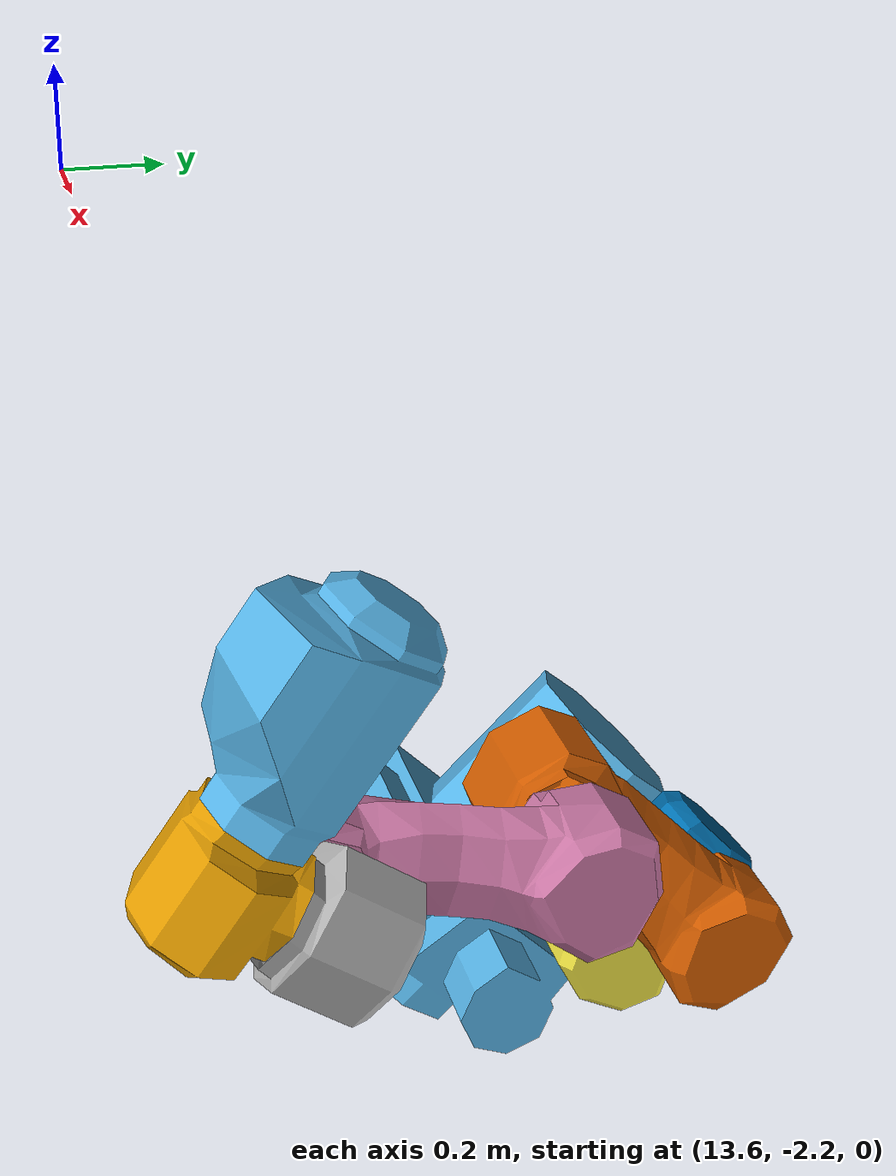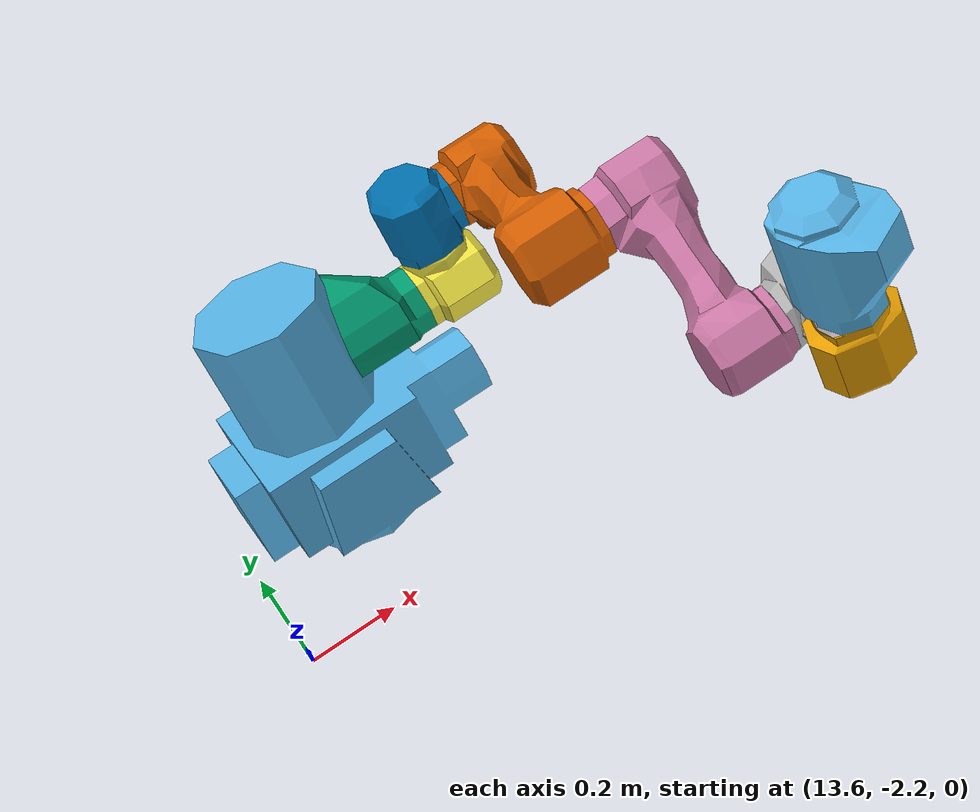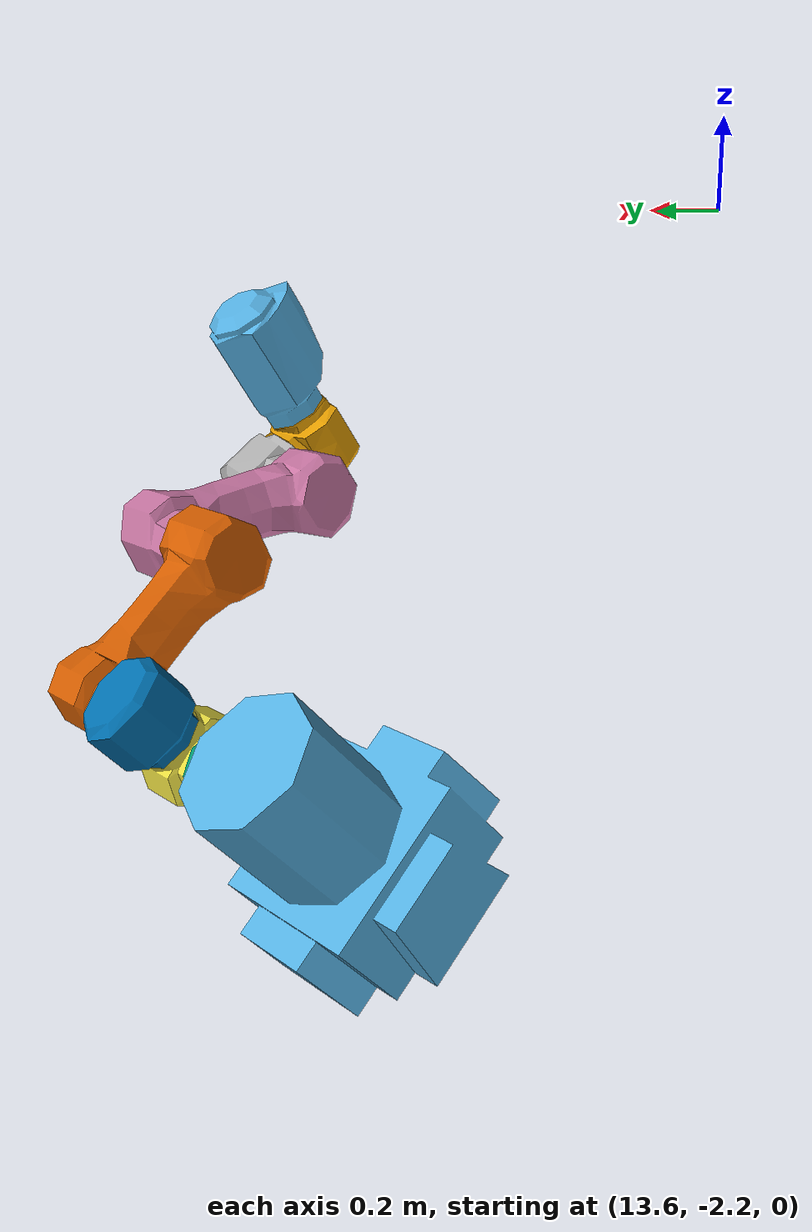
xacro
<?xml version="1.0"?>
<robot xmlns:xacro="http://ros.org/wiki/xacro" name="little_arm">

  <xacro:include filename="$(find gateway_description)/xacro/little_arm_macro.xacro"/>

  <xacro:little_arm> <!--  parent="gateway_body/root"-->
    <origin xyz="0.0 0.0 0.0" rpy="0.0 0.4363 -1.396"/>
  </xacro:little_arm>

  <link name="little_arm_link_tcp"/>

  <joint name="little_arm_tcp" type="fixed">
    <parent link="little_arm_link_8"/>
    <child link="little_arm_link_tcp"/>
    <origin xyz="0 0 0" rpy="0 0 0"/>
  </joint>

</robot>

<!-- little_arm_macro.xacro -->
<robot xmlns:xacro="http://ros.org/wiki/xacro" name="little_arm">

  <!-- LITTLE ARM -->
  <xacro:macro name="little_arm" params=" *origin "> <!--parent:='' -->

  <link name="little_arm_link_0"/>

  <link name="little_arm_link_1">
    <visual>
      <geometry>
        <mesh filename="package://gateway_description/meshes/little_arm/little_arm_link_1.dae" scale="1.0 1.0 1.0"/>
      </geometry>
    </visual>
    <collision>
      <geometry>
        <mesh filename="package://gateway_description/meshes/little_arm/little_arm_link_1.dae" scale="1.0 1.0 1.0"/>
      </geometry>
    </collision>
  </link>

  <link name="little_arm_link_2">
    <visual>
      <geometry>
        <mesh filename="package://gateway_description/meshes/little_arm/little_arm_link_2.dae" scale="1.0 1.0 1.0"/>
      </geometry>
    </visual>
    <collision>
      <geometry>
        <mesh filename="package://gateway_description/meshes/little_arm/little_arm_link_2.dae" scale="1.0 1.0 1.0"/>
      </geometry>
    </collision>
  </link>

  <link name="little_arm_link_3">
    <visual>
      <geometry>
        <mesh filename="package://gateway_description/meshes/little_arm/little_arm_link_3.dae" scale="1.0 1.0 1.0"/>
      </geometry>
    </visual>
    <collision>
      <geometry>
        <mesh filename="package://gateway_description/meshes/little_arm/little_arm_link_3.dae" scale="1.0 1.0 1.0"/>
      </geometry>
    </collision>
  </link>

  <link name="little_arm_link_4">
    <visual>
      <geometry>
        <mesh filename="package://gateway_description/meshes/little_arm/little_arm_link_4.dae" scale="1.0 1.0 1.0"/>
      </geometry>
    </visual>
    <collision>
      <geometry>
        <mesh filename="package://gateway_description/meshes/little_arm/little_arm_link_4.dae" scale="1.0 1.0 1.0"/>
      </geometry>
    </collision>
  </link>

  <link name="little_arm_link_5">
    <visual>
      <geometry>
        <mesh filename="package://gateway_description/meshes/little_arm/little_arm_link_5.dae" scale="1.0 1.0 1.0"/>
      </geometry>
    </visual>
    <collision>
      <geometry>
        <mesh filename="package://gateway_description/meshes/little_arm/little_arm_link_5.dae" scale="1.0 1.0 1.0"/>
      </geometry>
    </collision>
  </link>

  <link name="little_arm_link_6">
    <visual>
      <geometry>
        <mesh filename="package://gateway_description/meshes/little_arm/little_arm_link_6.dae" scale="1.0 1.0 1.0"/>
      </geometry>
    </visual>
    <collision>
      <geometry>
        <mesh filename="package://gateway_description/meshes/little_arm/little_arm_link_6.dae" scale="1.0 1.0 1.0"/>
      </geometry>
    </collision>
  </link>

  <link name="little_arm_link_7">
    <visual>
      <geometry>
        <mesh filename="package://gateway_description/meshes/little_arm/little_arm_link_7.dae" scale="1.0 1.0 1.0"/>
      </geometry>
    </visual>
    <collision>
      <geometry>
        <mesh filename="package://gateway_description/meshes/little_arm/little_arm_link_7.dae" scale="1.0 1.0 1.0"/>
      </geometry>
    </collision>
  </link>

  <link name="little_arm_link_8">
    <visual>
      <geometry>
        <mesh filename="package://gateway_description/meshes/little_arm/little_arm_link_8.dae" scale="1.0 1.0 1.0"/>
      </geometry>
    </visual>
    <collision>
      <geometry>
        <mesh filename="package://gateway_description/meshes/little_arm/little_arm_link_8.dae" scale="1.0 1.0 1.0"/>
      </geometry>
    </collision>
  </link>

  <link name="little_arm_link_9">
    <visual>
      <geometry>
        <mesh filename="package://gateway_description/meshes/little_arm/little_arm_link_9.dae" scale="1.0 1.0 1.0"/>
      </geometry>
    </visual>
    <collision>
      <geometry>
        <mesh filename="package://gateway_description/meshes/little_arm/little_arm_link_9.dae" scale="1.0 1.0 1.0"/>
      </geometry>
    </collision>
  </link>

  <joint name="little_arm_joint_1" type="fixed">
    <parent link="little_arm_link_0"/>
    <child link="little_arm_link_1"/>
    <origin xyz="13.984 -1.3352 -1.3367" rpy="2.3562 0.0 0.0"/>
  </joint>

  <joint name="little_arm_joint_2" type="revolute">
    <parent link="little_arm_link_1"/>
    <child link="little_arm_link_2"/>
    <axis xyz="1 0 0"/>
    <limit lower="-3.14" upper="3.14" velocity="3.1416" effort="100"/> <!-- MADE UP NUMBERS JUST FOR TESTING -->
  </joint>

  <joint name="little_arm_joint_3" type="revolute">
    <parent link="little_arm_link_2"/>
    <child link="little_arm_link_3"/>
    <origin xyz="0.38687 -0.008157 0.011094" rpy="0.0 0.0  0.0"/>
    <axis xyz="1 0 0"/>
    <limit lower="-3.14" upper="3.14" velocity="3.1416" effort="100"/> <!-- MADE UP NUMBERS JUST FOR TESTING -->
  </joint>

  <joint name="little_arm_joint_4" type="revolute">
    <parent link="little_arm_link_3"/>
    <child link="little_arm_link_4"/>
    <origin xyz="0.097745 0.0 -0.10467" rpy="0.0 0.0 1.5708"/>
    <axis xyz="0 0 1"/>
    <limit lower="-3.14" upper="3.14" velocity="3.1416" effort="100"/> <!-- MADE UP NUMBERS JUST FOR TESTING -->
  </joint>

  <joint name="little_arm_joint_5" type="revolute">
    <parent link="little_arm_link_4"/>
    <child link="little_arm_link_5"/>
    <origin xyz="-0.006176 -0.10467 -0.094197" rpy="0.0 0.0 0.0"/>
    <axis xyz="0 1 0"/>
    <limit lower="-3.14" upper="3.14" velocity="3.1416" effort="100"/> <!-- MADE UP NUMBERS JUST FOR TESTING -->
  </joint>

  <joint name="little_arm_joint_6" type="revolute">
    <parent link="little_arm_link_5"/>
    <child link="little_arm_link_6"/>
    <origin xyz="0.47551 -0.21354 0.008568" rpy="0.0 -0.6108 0.0"/>
    <axis xyz="0 1 0"/>
    <limit lower="-3.14" upper="3.14" velocity="3.1416" effort="100"/> <!-- MADE UP NUMBERS JUST FOR TESTING -->
  </joint>

  <joint name="little_arm_joint_7" type="revolute">
    <parent link="little_arm_link_6"/>
    <child link="little_arm_link_7"/>
    <origin xyz="0.47551 -0.21354 0.008567" rpy="0.0 0.4363324 0.0"/>
    <axis xyz="0 1 0"/>
    <limit lower="-3.14" upper="3.14" velocity="3.1416" effort="100"/> <!-- MADE UP NUMBERS JUST FOR TESTING -->
  </joint>

  <joint name="little_arm_joint_8" type="revolute">
    <parent link="little_arm_link_7"/>
    <child link="little_arm_link_8"/>
    <origin xyz="0.10062 -0.10467 -0.014366" rpy="0.0 0.0 0.0"/>
    <axis xyz="1 0 0"/>
    <limit lower="-3.14" upper="3.14" velocity="3.1416" effort="100"/> <!-- MADE UP NUMBERS JUST FOR TESTING -->
  </joint>

  <joint name="little_arm_joint_9" type="revolute">
    <parent link="little_arm_link_8"/>
    <child link="little_arm_link_9"/>
    <origin xyz="0.10467 0.000167 -0.10062" rpy="0.0 0.0 0.0"/>
    <axis xyz="0 0 1"/>
    <limit lower="-3.14" upper="3.14" velocity="3.1416" effort="100"/> <!-- MADE UP NUMBERS JUST FOR TESTING -->
  </joint>

  </xacro:macro>

</robot>
